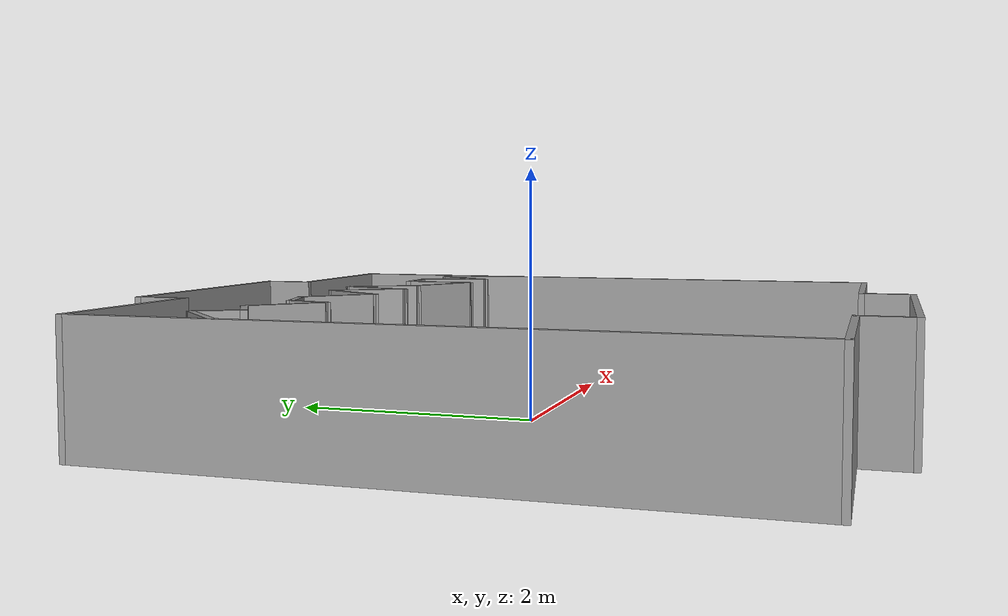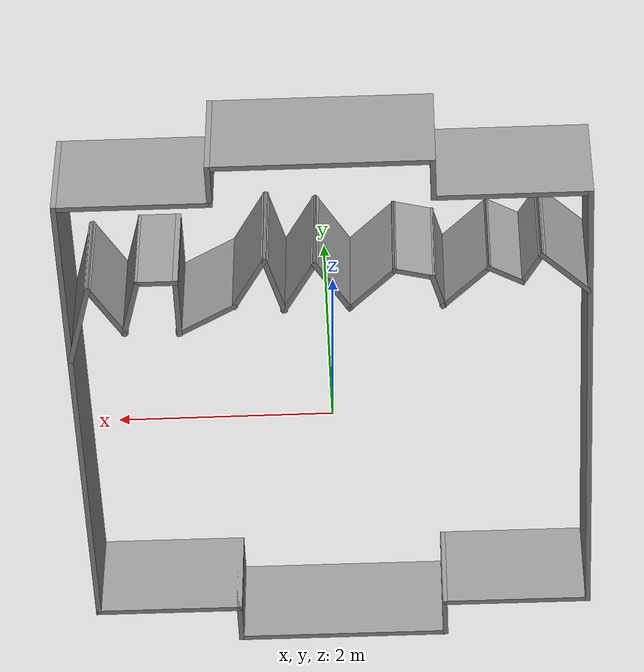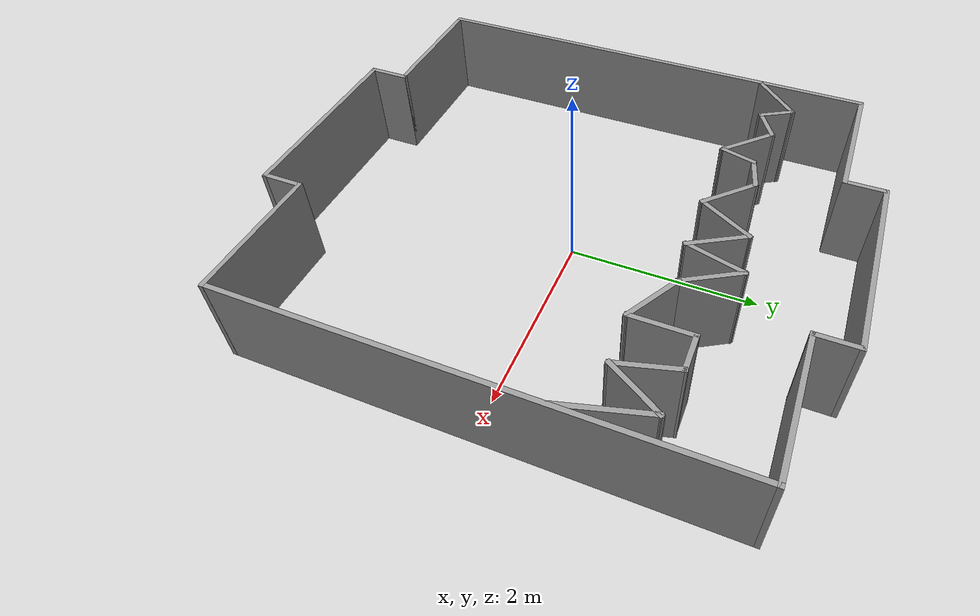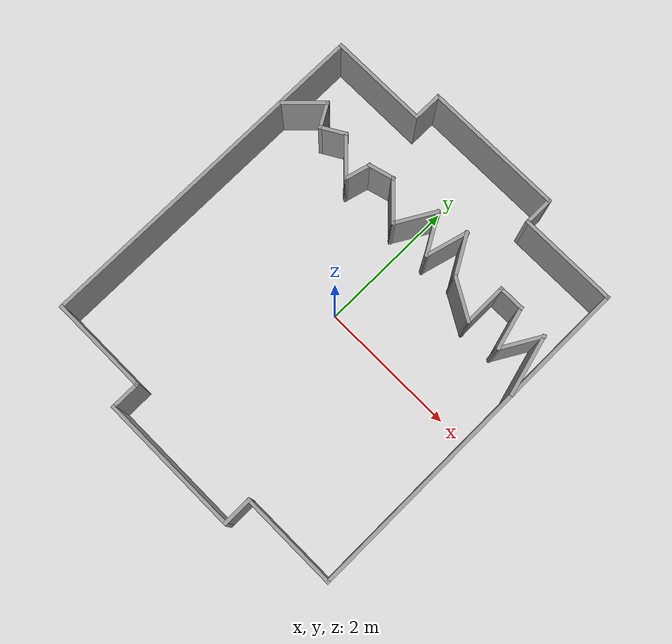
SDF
<?xml version='1.0'?>
<sdf version='1.6'>
  <model name='rgarena5'>
    <pose frame=''>0.000225 0 0 0 -0 0</pose>
    <link name='Wall_0'>
      <collision name='Wall_0_Collision'>
        <geometry>
          <box>
            <size>5.05 0.05 1</size>
          </box>
        </geometry>
        <pose frame=''>0 0 0.5 0 -0 0</pose>
      </collision>
      <visual name='Wall_0_Visual'>
        <pose frame=''>0 0 0.5 0 -0 0</pose>
        <geometry>
          <box>
            <size>5.05 0.05 1</size>
          </box>
        </geometry>
        <material>
          <script>
            <uri>file://media/materials/scripts/gazebo.material</uri>
            <name>Gazebo/Grey</name>
          </script>
          <ambient>1 1 1 1</ambient>
        </material>
        <meta>
          <layer>0</layer>
        </meta>
      </visual>
      <pose frame=''>-2.40022 0 0 0 -0 1.5708</pose>
    </link>
    <link name='Wall_14'>
      <collision name='Wall_14_Collision'>
        <geometry>
          <box>
            <size>1.45 0.05 1</size>
          </box>
        </geometry>
        <pose frame=''>0 0 0.5 0 -0 0</pose>
      </collision>
      <visual name='Wall_14_Visual'>
        <pose frame=''>0 0 0.5 0 -0 0</pose>
        <geometry>
          <box>
            <size>1.45 0.05 1</size>
          </box>
        </geometry>
        <material>
          <script>
            <uri>file://media/materials/scripts/gazebo.material</uri>
            <name>Gazebo/Grey</name>
          </script>
          <ambient>1 1 1 1</ambient>
        </material>
        <meta>
          <layer>0</layer>
        </meta>
      </visual>
      <pose frame=''>-1.70023 -2.5 0 0 -0 0</pose>
    </link>
    <link name='Wall_16'>
      <collision name='Wall_16_Collision'>
        <geometry>
          <box>
            <size>0.45 0.05 1</size>
          </box>
        </geometry>
        <pose frame=''>0 0 0.5 0 -0 0</pose>
      </collision>
      <visual name='Wall_16_Visual'>
        <pose frame=''>0 0 0.5 0 -0 0</pose>
        <geometry>
          <box>
            <size>0.45 0.05 1</size>
          </box>
        </geometry>
        <material>
          <script>
            <uri>file://media/materials/scripts/gazebo.material</uri>
            <name>Gazebo/Grey</name>
          </script>
          <ambient>1 1 1 1</ambient>
        </material>
        <meta>
          <layer>0</layer>
        </meta>
      </visual>
      <pose frame=''>-1.00022 -2.7 0 0 -0 -1.5708</pose>
    </link>
    <link name='Wall_18'>
      <collision name='Wall_18_Collision'>
        <geometry>
          <box>
            <size>2.065 0.05 1</size>
          </box>
        </geometry>
        <pose frame=''>0 0 0.5 0 -0 0</pose>
      </collision>
      <visual name='Wall_18_Visual'>
        <pose frame=''>0 0 0.5 0 -0 0</pose>
        <geometry>
          <box>
            <size>2.065 0.05 1</size>
          </box>
        </geometry>
        <material>
          <script>
            <uri>file://media/materials/scripts/gazebo.material</uri>
            <name>Gazebo/Grey</name>
          </script>
          <ambient>1 1 1 1</ambient>
        </material>
        <meta>
          <layer>0</layer>
        </meta>
      </visual>
      <pose frame=''>0.007275 -2.9 0 0 -0 0</pose>
    </link>
    <link name='Wall_19'>
      <collision name='Wall_19_Collision'>
        <geometry>
          <box>
            <size>0.45 0.05 1</size>
          </box>
        </geometry>
        <pose frame=''>0 0 0.5 0 -0 0</pose>
      </collision>
      <visual name='Wall_19_Visual'>
        <pose frame=''>0 0 0.5 0 -0 0</pose>
        <geometry>
          <box>
            <size>0.45 0.05 1</size>
          </box>
        </geometry>
        <material>
          <script>
            <uri>file://media/materials/scripts/gazebo.material</uri>
            <name>Gazebo/Grey</name>
          </script>
          <ambient>1 1 1 1</ambient>
        </material>
        <meta>
          <layer>0</layer>
        </meta>
      </visual>
      <pose frame=''>1.01477 -2.7 0 0 -0 1.5708</pose>
    </link>
    <link name='Wall_20'>
      <collision name='Wall_20_Collision'>
        <geometry>
          <box>
            <size>1.4359 0.05 1</size>
          </box>
        </geometry>
        <pose frame=''>0 0 0.5 0 -0 0</pose>
      </collision>
      <visual name='Wall_20_Visual'>
        <pose frame=''>0 0 0.5 0 -0 0</pose>
        <geometry>
          <box>
            <size>1.4359 0.05 1</size>
          </box>
        </geometry>
        <material>
          <script>
            <uri>file://media/materials/scripts/gazebo.material</uri>
            <name>Gazebo/Grey</name>
          </script>
          <ambient>1 1 1 1</ambient>
        </material>
        <meta>
          <layer>0</layer>
        </meta>
      </visual>
      <pose frame=''>1.70728 -2.5 0 0 -0 0</pose>
    </link>
    <link name='Wall_23'>
      <collision name='Wall_23_Collision'>
        <geometry>
          <box>
            <size>5.05 0.05 1</size>
          </box>
        </geometry>
        <pose frame=''>0 0 0.5 0 -0 0</pose>
      </collision>
      <visual name='Wall_23_Visual'>
        <pose frame=''>0 0 0.5 0 -0 0</pose>
        <geometry>
          <box>
            <size>5.05 0.05 1</size>
          </box>
        </geometry>
        <material>
          <script>
            <uri>file://media/materials/scripts/gazebo.material</uri>
            <name>Gazebo/Grey</name>
          </script>
          <ambient>1 1 1 1</ambient>
        </material>
        <meta>
          <layer>0</layer>
        </meta>
      </visual>
      <pose frame=''>2.39977 0 0 0 -0 1.5708</pose>
    </link>
    <link name='Wall_25'>
      <collision name='Wall_25_Collision'>
        <geometry>
          <box>
            <size>1.45 0.05 1</size>
          </box>
        </geometry>
        <pose frame=''>0 0 0.5 0 -0 0</pose>
      </collision>
      <visual name='Wall_25_Visual'>
        <pose frame=''>0 0 0.5 0 -0 0</pose>
        <geometry>
          <box>
            <size>1.45 0.05 1</size>
          </box>
        </geometry>
        <material>
          <script>
            <uri>file://media/materials/scripts/gazebo.material</uri>
            <name>Gazebo/Grey</name>
          </script>
          <ambient>1 1 1 1</ambient>
        </material>
        <meta>
          <layer>0</layer>
        </meta>
      </visual>
      <pose frame=''>1.69978 2.5 0 0 -0 3.14159</pose>
    </link>
    <link name='Wall_28'>
      <collision name='Wall_28_Collision'>
        <geometry>
          <box>
            <size>0.45 0.05 1</size>
          </box>
        </geometry>
        <pose frame=''>0 0 0.5 0 -0 0</pose>
      </collision>
      <visual name='Wall_28_Visual'>
        <pose frame=''>0 0 0.5 0 -0 0</pose>
        <geometry>
          <box>
            <size>0.45 0.05 1</size>
          </box>
        </geometry>
        <material>
          <script>
            <uri>file://media/materials/scripts/gazebo.material</uri>
            <name>Gazebo/Grey</name>
          </script>
          <ambient>1 1 1 1</ambient>
        </material>
        <meta>
          <layer>0</layer>
        </meta>
      </visual>
      <pose frame=''>0.999775 2.7 0 0 -0 1.5708</pose>
    </link>
    <link name='Wall_29'>
      <collision name='Wall_29_Collision'>
        <geometry>
          <box>
            <size>2.05 0.05 1</size>
          </box>
        </geometry>
        <pose frame=''>0 0 0.5 0 -0 0</pose>
      </collision>
      <visual name='Wall_29_Visual'>
        <pose frame=''>0 0 0.5 0 -0 0</pose>
        <geometry>
          <box>
            <size>2.05 0.05 1</size>
          </box>
        </geometry>
        <material>
          <script>
            <uri>file://media/materials/scripts/gazebo.material</uri>
            <name>Gazebo/Grey</name>
          </script>
          <ambient>1 1 1 1</ambient>
        </material>
        <meta>
          <layer>0</layer>
        </meta>
      </visual>
      <pose frame=''>-0.000225 2.9 0 0 -0 3.14159</pose>
    </link>
    <link name='Wall_30'>
      <collision name='Wall_30_Collision'>
        <geometry>
          <box>
            <size>0.45 0.05 1</size>
          </box>
        </geometry>
        <pose frame=''>0 0 0.5 0 -0 0</pose>
      </collision>
      <visual name='Wall_30_Visual'>
        <pose frame=''>0 0 0.5 0 -0 0</pose>
        <geometry>
          <box>
            <size>0.45 0.05 1</size>
          </box>
        </geometry>
        <material>
          <script>
            <uri>file://media/materials/scripts/gazebo.material</uri>
            <name>Gazebo/Grey</name>
          </script>
          <ambient>1 1 1 1</ambient>
        </material>
        <meta>
          <layer>0</layer>
        </meta>
      </visual>
      <pose frame=''>-1.00022 2.7 0 0 -0 -1.5708</pose>
    </link>
    <link name='Wall_31'>
      <collision name='Wall_31_Collision'>
        <geometry>
          <box>
            <size>1.45 0.05 1</size>
          </box>
        </geometry>
        <pose frame=''>0 0 0.5 0 -0 0</pose>
      </collision>
      <visual name='Wall_31_Visual'>
        <pose frame=''>0 0 0.5 0 -0 0</pose>
        <geometry>
          <box>
            <size>1.45 0.05 1</size>
          </box>
        </geometry>
        <material>
          <script>
            <uri>file://media/materials/scripts/gazebo.material</uri>
            <name>Gazebo/Grey</name>
          </script>
          <ambient>1 1 1 1</ambient>
        </material>
        <meta>
          <layer>0</layer>
        </meta>
      </visual>
      <pose frame=''>-1.70023 2.5 0 0 -0 3.14159</pose>
    </link>
    <link name='Wall_45'>
      <collision name='Wall_45_Collision'>
        <geometry>
          <box>
            <size>0.649636 0.05 1</size>
          </box>
        </geometry>
        <pose frame=''>0 0 0.5 0 -0 0</pose>
      </collision>
      <visual name='Wall_45_Visual'>
        <pose frame=''>0 0 0.5 0 -0 0</pose>
        <geometry>
          <box>
            <size>0.649636 0.05 1</size>
          </box>
        </geometry>
        <material>
          <script>
            <uri>file://media/materials/scripts/gazebo.material</uri>
            <name>Gazebo/Grey</name>
          </script>
          <ambient>1 1 1 1</ambient>
        </material>
        <meta>
          <layer>0</layer>
        </meta>
      </visual>
      <pose frame=''>-2.17422 1.598 0 0 -0 0.785398</pose>
    </link>
    <link name='Wall_46'>
      <collision name='Wall_46_Collision'>
        <geometry>
          <box>
            <size>0.399906 0.05 1</size>
          </box>
        </geometry>
        <pose frame=''>0 0 0.5 0 -0 0</pose>
      </collision>
      <visual name='Wall_46_Visual'>
        <pose frame=''>0 0 0.5 0 -0 0</pose>
        <geometry>
          <box>
            <size>0.399906 0.05 1</size>
          </box>
        </geometry>
        <material>
          <script>
            <uri>file://media/materials/scripts/gazebo.material</uri>
            <name>Gazebo/Grey</name>
          </script>
          <ambient>1 1 1 1</ambient>
        </material>
        <meta>
          <layer>0</layer>
        </meta>
      </visual>
      <pose frame=''>-1.87472 1.6585 0 0 -0 -1.04704</pose>
    </link>
    <link name='Wall_47'>
      <collision name='Wall_47_Collision'>
        <geometry>
          <box>
            <size>0.399907 0.05 1</size>
          </box>
        </geometry>
        <pose frame=''>0 0 0.5 0 -0 0</pose>
      </collision>
      <visual name='Wall_47_Visual'>
        <pose frame=''>0 0 0.5 0 -0 0</pose>
        <geometry>
          <box>
            <size>0.399907 0.05 1</size>
          </box>
        </geometry>
        <material>
          <script>
            <uri>file://media/materials/scripts/gazebo.material</uri>
            <name>Gazebo/Grey</name>
          </script>
          <ambient>1 1 1 1</ambient>
        </material>
        <meta>
          <layer>0</layer>
        </meta>
      </visual>
      <pose frame=''>-1.63573 1.5945 0 0 -0 0.523754</pose>
    </link>
    <link name='Wall_48'>
      <collision name='Wall_48_Collision'>
        <geometry>
          <box>
            <size>0.649969 0.05 1</size>
          </box>
        </geometry>
        <pose frame=''>0 0 0.5 0 -0 0</pose>
      </collision>
      <visual name='Wall_48_Visual'>
        <pose frame=''>0 0 0.5 0 -0 0</pose>
        <geometry>
          <box>
            <size>0.649969 0.05 1</size>
          </box>
        </geometry>
        <material>
          <script>
            <uri>file://media/materials/scripts/gazebo.material</uri>
            <name>Gazebo/Grey</name>
          </script>
          <ambient>1 1 1 1</ambient>
        </material>
        <meta>
          <layer>0</layer>
        </meta>
      </visual>
      <pose frame=''>-1.27222 1.47 0 0 -0 -0.785398</pose>
    </link>
    <link name='Wall_49'>
      <collision name='Wall_49_Collision'>
        <geometry>
          <box>
            <size>0.399837 0.05 1</size>
          </box>
        </geometry>
        <pose frame=''>0 0 0.5 0 -0 0</pose>
      </collision>
      <visual name='Wall_49_Visual'>
        <pose frame=''>0 0 0.5 0 -0 0</pose>
        <geometry>
          <box>
            <size>0.399837 0.05 1</size>
          </box>
        </geometry>
        <material>
          <script>
            <uri>file://media/materials/scripts/gazebo.material</uri>
            <name>Gazebo/Grey</name>
          </script>
          <ambient>1 1 1 1</ambient>
        </material>
        <meta>
          <layer>0</layer>
        </meta>
      </visual>
      <pose frame=''>-1.01473 1.427 0 0 -0 1.3078</pose>
    </link>
    <link name='Wall_50'>
      <collision name='Wall_50_Collision'>
        <geometry>
          <box>
            <size>0.3998 0.05 1</size>
          </box>
        </geometry>
        <pose frame=''>0 0 0.5 0 -0 0</pose>
      </collision>
      <visual name='Wall_50_Visual'>
        <pose frame=''>0 0 0.5 0 -0 0</pose>
        <geometry>
          <box>
            <size>0.3998 0.05 1</size>
          </box>
        </geometry>
        <material>
          <script>
            <uri>file://media/materials/scripts/gazebo.material</uri>
            <name>Gazebo/Grey</name>
          </script>
          <ambient>1 1 1 1</ambient>
        </material>
        <meta>
          <layer>0</layer>
        </meta>
      </visual>
      <pose frame=''>-0.800225 1.641 0 0 -0 0.260234</pose>
    </link>
    <link name='Wall_51'>
      <collision name='Wall_51_Collision'>
        <geometry>
          <box>
            <size>0.649635 0.05 1</size>
          </box>
        </geometry>
        <pose frame=''>0 0 0.5 0 -0 0</pose>
      </collision>
      <visual name='Wall_51_Visual'>
        <pose frame=''>0 0 0.5 0 -0 0</pose>
        <geometry>
          <box>
            <size>0.649635 0.05 1</size>
          </box>
        </geometry>
        <material>
          <script>
            <uri>file://media/materials/scripts/gazebo.material</uri>
            <name>Gazebo/Grey</name>
          </script>
          <ambient>1 1 1 1</ambient>
        </material>
        <meta>
          <layer>0</layer>
        </meta>
      </visual>
      <pose frame=''>-0.419225 1.474 0 0 -0 -0.785398</pose>
    </link>
    <link name='Wall_52'>
      <collision name='Wall_52_Collision'>
        <geometry>
          <box>
            <size>0.650227 0.05 1</size>
          </box>
        </geometry>
        <pose frame=''>0 0 0.5 0 -0 0</pose>
      </collision>
      <visual name='Wall_52_Visual'>
        <pose frame=''>0 0 0.5 0 -0 0</pose>
        <geometry>
          <box>
            <size>0.650227 0.05 1</size>
          </box>
        </geometry>
        <material>
          <script>
            <uri>file://media/materials/scripts/gazebo.material</uri>
            <name>Gazebo/Grey</name>
          </script>
          <ambient>1 1 1 1</ambient>
        </material>
        <meta>
          <layer>0</layer>
        </meta>
      </visual>
      <pose frame=''>-0.057225 1.522 0 0 -0 1.04752</pose>
    </link>
    <link name='Wall_53'>
      <collision name='Wall_53_Collision'>
        <geometry>
          <box>
            <size>0.65028 0.05 1</size>
          </box>
        </geometry>
        <pose frame=''>0 0 0.5 0 -0 0</pose>
      </collision>
      <visual name='Wall_53_Visual'>
        <pose frame=''>0 0 0.5 0 -0 0</pose>
        <geometry>
          <box>
            <size>0.65028 0.05 1</size>
          </box>
        </geometry>
        <material>
          <script>
            <uri>file://media/materials/scripts/gazebo.material</uri>
            <name>Gazebo/Grey</name>
          </script>
          <ambient>1 1 1 1</ambient>
        </material>
        <meta>
          <layer>0</layer>
        </meta>
      </visual>
      <pose frame=''>0.242775 1.522 0 0 -0 -1.04752</pose>
    </link>
    <link name='Wall_54'>
      <collision name='Wall_54_Collision'>
        <geometry>
          <box>
            <size>0.650201 0.05 1</size>
          </box>
        </geometry>
        <pose frame=''>0 0 0.5 0 -0 0</pose>
      </collision>
      <visual name='Wall_54_Visual'>
        <pose frame=''>0 0 0.5 0 -0 0</pose>
        <geometry>
          <box>
            <size>0.650201 0.05 1</size>
          </box>
        </geometry>
        <material>
          <script>
            <uri>file://media/materials/scripts/gazebo.material</uri>
            <name>Gazebo/Grey</name>
          </script>
          <ambient>1 1 1 1</ambient>
        </material>
        <meta>
          <layer>0</layer>
        </meta>
      </visual>
      <pose frame=''>0.470275 1.552 0 0 -0 1.30966</pose>
    </link>
    <link name='Wall_55'>
      <collision name='Wall_55_Collision'>
        <geometry>
          <box>
            <size>0.650478 0.05 1</size>
          </box>
        </geometry>
        <pose frame=''>0 0 0.5 0 -0 0</pose>
      </collision>
      <visual name='Wall_55_Visual'>
        <pose frame=''>0 0 0.5 0 -0 0</pose>
        <geometry>
          <box>
            <size>0.650478 0.05 1</size>
          </box>
        </geometry>
        <material>
          <script>
            <uri>file://media/materials/scripts/gazebo.material</uri>
            <name>Gazebo/Grey</name>
          </script>
          <ambient>1 1 1 1</ambient>
        </material>
        <meta>
          <layer>0</layer>
        </meta>
      </visual>
      <pose frame=''>0.697775 1.582 0 0 -0 -1.04752</pose>
    </link>
    <link name='Wall_56'>
      <collision name='Wall_56_Collision'>
        <geometry>
          <box>
            <size>0.650352 0.05 1</size>
          </box>
        </geometry>
        <pose frame=''>0 0 0.5 0 -0 0</pose>
      </collision>
      <visual name='Wall_56_Visual'>
        <pose frame=''>0 0 0.5 0 -0 0</pose>
        <geometry>
          <box>
            <size>0.650352 0.05 1</size>
          </box>
        </geometry>
        <material>
          <script>
            <uri>file://media/materials/scripts/gazebo.material</uri>
            <name>Gazebo/Grey</name>
          </script>
          <ambient>1 1 1 1</ambient>
        </material>
        <meta>
          <layer>0</layer>
        </meta>
      </visual>
      <pose frame=''>1.10777 1.172 0 0 -0 -0.523278</pose>
    </link>
    <link name='Wall_57'>
      <collision name='Wall_57_Collision'>
        <geometry>
          <box>
            <size>0.650102 0.05 1</size>
          </box>
        </geometry>
        <pose frame=''>0 0 0.5 0 -0 0</pose>
      </collision>
      <visual name='Wall_57_Visual'>
        <pose frame=''>0 0 0.5 0 -0 0</pose>
        <geometry>
          <box>
            <size>0.650102 0.05 1</size>
          </box>
        </geometry>
        <material>
          <script>
            <uri>file://media/materials/scripts/gazebo.material</uri>
            <name>Gazebo/Grey</name>
          </script>
          <ambient>1 1 1 1</ambient>
        </material>
        <meta>
          <layer>0</layer>
        </meta>
      </visual>
      <pose frame=''>1.36777 1.322 0 0 -0 1.5708</pose>
    </link>
    <link name='Wall_58'>
      <collision name='Wall_58_Collision'>
        <geometry>
          <box>
            <size>0.400081 0.05 1</size>
          </box>
        </geometry>
        <pose frame=''>0 0 0.5 0 -0 0</pose>
      </collision>
      <visual name='Wall_58_Visual'>
        <pose frame=''>0 0 0.5 0 -0 0</pose>
        <geometry>
          <box>
            <size>0.400081 0.05 1</size>
          </box>
        </geometry>
        <material>
          <script>
            <uri>file://media/materials/scripts/gazebo.material</uri>
            <name>Gazebo/Grey</name>
          </script>
          <ambient>1 1 1 1</ambient>
        </material>
        <meta>
          <layer>0</layer>
        </meta>
      </visual>
      <pose frame=''>1.54278 1.622 0 0 -0 0</pose>
    </link>
    <link name='Wall_59'>
      <collision name='Wall_59_Collision'>
        <geometry>
          <box>
            <size>0.649923 0.05 1</size>
          </box>
        </geometry>
        <pose frame=''>0 0 0.5 0 -0 0</pose>
      </collision>
      <visual name='Wall_59_Visual'>
        <pose frame=''>0 0 0.5 0 -0 0</pose>
        <geometry>
          <box>
            <size>0.649923 0.05 1</size>
          </box>
        </geometry>
        <material>
          <script>
            <uri>file://media/materials/scripts/gazebo.material</uri>
            <name>Gazebo/Grey</name>
          </script>
          <ambient>1 1 1 1</ambient>
        </material>
        <meta>
          <layer>0</layer>
        </meta>
      </visual>
      <pose frame=''>1.79527 1.3325 0 0 -0 -1.30923</pose>
    </link>
    <link name='Wall_60'>
      <collision name='Wall_60_Collision'>
        <geometry>
          <box>
            <size>0.649793 0.05 1</size>
          </box>
        </geometry>
        <pose frame=''>0 0 0.5 0 -0 0</pose>
      </collision>
      <visual name='Wall_60_Visual'>
        <pose frame=''>0 0 0.5 0 -0 0</pose>
        <geometry>
          <box>
            <size>0.649793 0.05 1</size>
          </box>
        </geometry>
        <material>
          <script>
            <uri>file://media/materials/scripts/gazebo.material</uri>
            <name>Gazebo/Grey</name>
          </script>
          <ambient>1 1 1 1</ambient>
        </material>
        <meta>
          <layer>0</layer>
        </meta>
      </visual>
      <pose frame=''>2.02278 1.3025 0 0 -0 1.04668</pose>
    </link>
    <link name='Wall_61'>
      <collision name='Wall_61_Collision'>
        <geometry>
          <box>
            <size>0.899941 0.05 1</size>
          </box>
        </geometry>
        <pose frame=''>0 0 0.5 0 -0 0</pose>
      </collision>
      <visual name='Wall_61_Visual'>
        <pose frame=''>0 0 0.5 0 -0 0</pose>
        <geometry>
          <box>
            <size>0.899941 0.05 1</size>
          </box>
        </geometry>
        <material>
          <script>
            <uri>file://media/materials/scripts/gazebo.material</uri>
            <name>Gazebo/Grey</name>
          </script>
          <ambient>1 1 1 1</ambient>
        </material>
        <meta>
          <layer>0</layer>
        </meta>
      </visual>
      <pose frame=''>2.28277 1.1515 0 0 -0 -1.30898</pose>
    </link>
    <static>1</static>
  </model>
</sdf>
